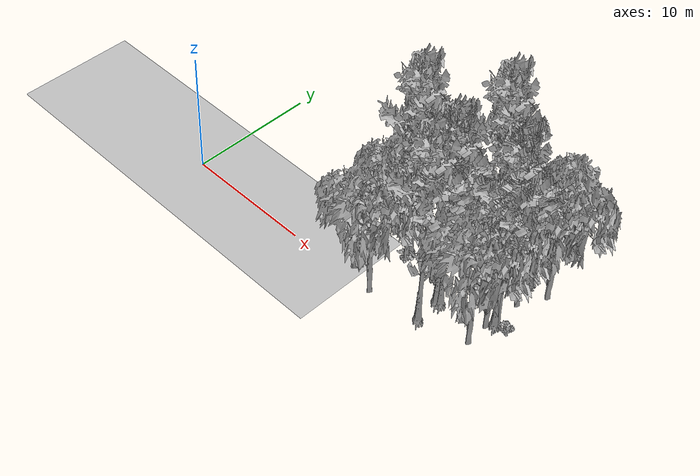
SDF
<sdf version="1.7">
 <world name="default">
  <model name="ground_plane">
   <static>1</static>
   <link name="link">
    <collision name="collision">
     <geometry><plane><normal>0 0 1</normal><size>100 100</size></plane></geometry>
     <surface><contact><ode><min_depth>0.01</min_depth><max_vel>0</max_vel></ode></contact></surface>
    </collision>
    <visual name="grass">
     <cast_shadows>0</cast_shadows>
     <geometry>
      <mesh>
       <scale>0.5814285714285714 0.18142857142857144 0.1</scale>
       <uri>file://grass_plane/meshes/grass_plane.dae</uri>
      </mesh>
     </geometry>
    </visual>
   </link>
  </model>
  <model name="Tree 16">
   <static>1</static>
   <pose>24.49664673380343 3.461644481899274 0 1.57079 -0 0</pose>
   <link name="link">
    <collision name="collision">
     <geometry><mesh><scale>3.5 5 3.5</scale><uri>model://tree_2/meshes/tree_2.obj</uri></mesh></geometry>
    </collision>
    <visual name="visual">
     <geometry><mesh><scale>3.5 5 3.5</scale><uri>model://tree_2/meshes/tree_2.obj</uri></mesh></geometry>
    </visual>
   </link>
  </model>
  <model name="Tree 78">
   <static>1</static>
   <pose>24.597199086074596 1.6079972094709376 0 1.57079 -0 0</pose>
   <link name="link">
    <collision name="collision">
     <geometry><mesh><scale>3.5 5 3.5</scale><uri>model://tree_2/meshes/tree_2.obj</uri></mesh></geometry>
    </collision>
    <visual name="visual">
     <geometry><mesh><scale>3.5 5 3.5</scale><uri>model://tree_2/meshes/tree_2.obj</uri></mesh></geometry>
    </visual>
   </link>
  </model>
  <model name="Tree 95">
   <static>1</static>
   <pose>17.052737966052987 0.11408151723240856 0 1.57079 -0 0</pose>
   <link name="link">
    <collision name="collision">
     <geometry><mesh><scale>3.5 5 3.5</scale><uri>model://tree_2/meshes/tree_2.obj</uri></mesh></geometry>
    </collision>
    <visual name="visual">
     <geometry><mesh><scale>3.5 5 3.5</scale><uri>model://tree_2/meshes/tree_2.obj</uri></mesh></geometry>
    </visual>
   </link>
  </model>
  <model name="Tree 170">
   <static>1</static>
   <pose>24.75178467734358 6.374883119293582 0 1.57079 -0 0</pose>
   <link name="link">
    <collision name="collision">
     <geometry><mesh><scale>3.5 5 3.5</scale><uri>model://tree_2/meshes/tree_2.obj</uri></mesh></geometry>
    </collision>
    <visual name="visual">
     <geometry><mesh><scale>3.5 5 3.5</scale><uri>model://tree_2/meshes/tree_2.obj</uri></mesh></geometry>
    </visual>
   </link>
  </model>
  <model name="Tree 173">
   <static>1</static>
   <pose>20.76287349416576 8.241500714352384 0 1.57079 -0 0</pose>
   <link name="link">
    <collision name="collision">
     <geometry><mesh><scale>3.5 5 3.5</scale><uri>model://tree_9/meshes/tree_9.obj</uri></mesh></geometry>
    </collision>
    <visual name="visual">
     <geometry><mesh><scale>3.5 5 3.5</scale><uri>model://tree_9/meshes/tree_9.obj</uri></mesh></geometry>
    </visual>
   </link>
  </model>
  <model name="Tree 174">
   <static>1</static>
   <pose>24.863606701577552 4.287742623416094 0 1.57079 -0 0</pose>
   <link name="link">
    <collision name="collision">
     <geometry><mesh><scale>3.5 5 3.5</scale><uri>model://tree_9/meshes/tree_9.obj</uri></mesh></geometry>
    </collision>
    <visual name="visual">
     <geometry><mesh><scale>3.5 5 3.5</scale><uri>model://tree_9/meshes/tree_9.obj</uri></mesh></geometry>
    </visual>
   </link>
  </model>
  <model name="Tree 235">
   <static>1</static>
   <pose>24.838142827110886 4.098030237808377 0 1.57079 -0 0</pose>
   <link name="link">
    <collision name="collision">
     <geometry><mesh><scale>3.5 5 3.5</scale><uri>model://tree_9/meshes/tree_9.obj</uri></mesh></geometry>
    </collision>
    <visual name="visual">
     <geometry><mesh><scale>3.5 5 3.5</scale><uri>model://tree_9/meshes/tree_9.obj</uri></mesh></geometry>
    </visual>
   </link>
  </model>
  <model name="Tree 307">
   <static>1</static>
   <pose>21.137675884332978 2.875929653436671 0 1.57079 -0 0</pose>
   <link name="link">
    <collision name="collision">
     <geometry><mesh><scale>3.5 5 3.5</scale><uri>model://tree_9/meshes/tree_9.obj</uri></mesh></geometry>
    </collision>
    <visual name="visual">
     <geometry><mesh><scale>3.5 5 3.5</scale><uri>model://tree_9/meshes/tree_9.obj</uri></mesh></geometry>
    </visual>
   </link>
  </model>
  <model name="Tree 336">
   <static>1</static>
   <pose>16.47314185437483 4.916526398757185 0 1.57079 -0 0</pose>
   <link name="link">
    <collision name="collision">
     <geometry><mesh><scale>3.5 5 3.5</scale><uri>model://tree_9/meshes/tree_9.obj</uri></mesh></geometry>
    </collision>
    <visual name="visual">
     <geometry><mesh><scale>3.5 5 3.5</scale><uri>model://tree_9/meshes/tree_9.obj</uri></mesh></geometry>
    </visual>
   </link>
  </model>
  <model name="Tree 359">
   <static>1</static>
   <pose>21.036569245016622 0.7607294505939048 0 1.57079 -0 0</pose>
   <link name="link">
    <collision name="collision">
     <geometry><mesh><scale>3.5 5 3.5</scale><uri>model://tree_9/meshes/tree_9.obj</uri></mesh></geometry>
    </collision>
    <visual name="visual">
     <geometry><mesh><scale>3.5 5 3.5</scale><uri>model://tree_9/meshes/tree_9.obj</uri></mesh></geometry>
    </visual>
   </link>
  </model>
  <model name="Tree 374">
   <static>1</static>
   <pose>20.8571998067585 2.7715333120133714 0 1.57079 -0 0</pose>
   <link name="link">
    <collision name="collision">
     <geometry><mesh><scale>3.5 5 3.5</scale><uri>model://tree_9/meshes/tree_9.obj</uri></mesh></geometry>
    </collision>
    <visual name="visual">
     <geometry><mesh><scale>3.5 5 3.5</scale><uri>model://tree_9/meshes/tree_9.obj</uri></mesh></geometry>
    </visual>
   </link>
  </model>
  <model name="Tree 396">
   <static>1</static>
   <pose>25.76338670042722 8.349748143478351 0 1.57079 -0 0</pose>
   <link name="link">
    <collision name="collision">
     <geometry><mesh><scale>3.5 5 3.5</scale><uri>model://tree_2/meshes/tree_2.obj</uri></mesh></geometry>
    </collision>
    <visual name="visual">
     <geometry><mesh><scale>3.5 5 3.5</scale><uri>model://tree_2/meshes/tree_2.obj</uri></mesh></geometry>
    </visual>
   </link>
  </model>
  <model name="Tree 418">
   <static>1</static>
   <pose>16.808416536378246 4.016754229779291 0 1.57079 -0 0</pose>
   <link name="link">
    <collision name="collision">
     <geometry><mesh><scale>3.5 5 3.5</scale><uri>model://tree_2/meshes/tree_2.obj</uri></mesh></geometry>
    </collision>
    <visual name="visual">
     <geometry><mesh><scale>3.5 5 3.5</scale><uri>model://tree_2/meshes/tree_2.obj</uri></mesh></geometry>
    </visual>
   </link>
  </model>
  <model name="Bush 78">
   <static>1</static>
   <pose>21.522697768892243 8.681034996040676 0 1.57079 -0 0</pose>
   <link name="link">
    <collision name="collision">
     <geometry><mesh><scale>2 2 2</scale><uri>model://bush_2/meshes/bush_2.obj</uri></mesh></geometry>
     <surface><contact><collide_without_contact>false</collide_without_contact></contact></surface>
    </collision>
    <visual name="visual">
     <geometry><mesh><scale>2 2 2</scale><uri>model://bush_2/meshes/bush_2.obj</uri></mesh></geometry>
    </visual>
   </link>
  </model>
  <model name="Bush 100">
   <static>1</static>
   <pose>16.619422823045838 4.200925866928785 0 1.57079 -0 0</pose>
   <link name="link">
    <collision name="collision">
     <geometry><mesh><scale>2 2 2</scale><uri>model://bush_2/meshes/bush_2.obj</uri></mesh></geometry>
     <surface><contact><collide_without_contact>false</collide_without_contact></contact></surface>
    </collision>
    <visual name="visual">
     <geometry><mesh><scale>2 2 2</scale><uri>model://bush_2/meshes/bush_2.obj</uri></mesh></geometry>
    </visual>
   </link>
  </model>
  <model name="Bush 168">
   <static>1</static>
   <pose>20.20962735066915 3.577679915180614 0 1.57079 -0 0</pose>
   <link name="link">
    <collision name="collision">
     <geometry><mesh><scale>2 2 2</scale><uri>model://bush_5/meshes/bush_5.obj</uri></mesh></geometry>
     <surface><contact><collide_without_contact>false</collide_without_contact></contact></surface>
    </collision>
    <visual name="visual">
     <geometry><mesh><scale>2 2 2</scale><uri>model://bush_5/meshes/bush_5.obj</uri></mesh></geometry>
    </visual>
   </link>
  </model>
  <model name="Bush 183">
   <static>1</static>
   <pose>21.980502266673724 5.489676541698852 0 1.57079 -0 0</pose>
   <link name="link">
    <collision name="collision">
     <geometry><mesh><scale>2 2 2</scale><uri>model://bush_3/meshes/bush_3.obj</uri></mesh></geometry>
     <surface><contact><collide_without_contact>false</collide_without_contact></contact></surface>
    </collision>
    <visual name="visual">
     <geometry><mesh><scale>2 2 2</scale><uri>model://bush_3/meshes/bush_3.obj</uri></mesh></geometry>
    </visual>
   </link>
  </model>
  <model name="Bush 198">
   <static>1</static>
   <pose>21.569499777553588 7.559222252501858 0 1.57079 -0 0</pose>
   <link name="link">
    <collision name="collision">
     <geometry><mesh><scale>2 2 2</scale><uri>model://bush_2/meshes/bush_2.obj</uri></mesh></geometry>
     <surface><contact><collide_without_contact>false</collide_without_contact></contact></surface>
    </collision>
    <visual name="visual">
     <geometry><mesh><scale>2 2 2</scale><uri>model://bush_2/meshes/bush_2.obj</uri></mesh></geometry>
    </visual>
   </link>
  </model>
  <model name="Bush 224">
   <static>1</static>
   <pose>18.489470115579778 5.523917460692225 0 1.57079 -0 0</pose>
   <link name="link">
    <collision name="collision">
     <geometry><mesh><scale>2 2 2</scale><uri>model://bush_3/meshes/bush_3.obj</uri></mesh></geometry>
     <surface><contact><collide_without_contact>false</collide_without_contact></contact></surface>
    </collision>
    <visual name="visual">
     <geometry><mesh><scale>2 2 2</scale><uri>model://bush_3/meshes/bush_3.obj</uri></mesh></geometry>
    </visual>
   </link>
  </model>
  <model name="Bush 240">
   <static>1</static>
   <pose>22.776000761902807 5.742112296360208 0 1.57079 -0 0</pose>
   <link name="link">
    <collision name="collision">
     <geometry><mesh><scale>2 2 2</scale><uri>model://bush_2/meshes/bush_2.obj</uri></mesh></geometry>
     <surface><contact><collide_without_contact>false</collide_without_contact></contact></surface>
    </collision>
    <visual name="visual">
     <geometry><mesh><scale>2 2 2</scale><uri>model://bush_2/meshes/bush_2.obj</uri></mesh></geometry>
    </visual>
   </link>
  </model>
  <model name="Bush 297">
   <static>1</static>
   <pose>24.705666986533956 7.710437832307424 0 1.57079 -0 0</pose>
   <link name="link">
    <collision name="collision">
     <geometry><mesh><scale>2 2 2</scale><uri>model://bush_0/meshes/bush_0.obj</uri></mesh></geometry>
     <surface><contact><collide_without_contact>false</collide_without_contact></contact></surface>
    </collision>
    <visual name="visual">
     <geometry><mesh><scale>2 2 2</scale><uri>model://bush_0/meshes/bush_0.obj</uri></mesh></geometry>
    </visual>
   </link>
  </model>
  <model name="Bush 327">
   <static>1</static>
   <pose>25.63518489210476 4.331842344255126 0 1.57079 -0 0</pose>
   <link name="link">
    <collision name="collision">
     <geometry><mesh><scale>2 2 2</scale><uri>model://bush_2/meshes/bush_2.obj</uri></mesh></geometry>
     <surface><contact><collide_without_contact>false</collide_without_contact></contact></surface>
    </collision>
    <visual name="visual">
     <geometry><mesh><scale>2 2 2</scale><uri>model://bush_2/meshes/bush_2.obj</uri></mesh></geometry>
    </visual>
   </link>
  </model>
 </world>
</sdf>
